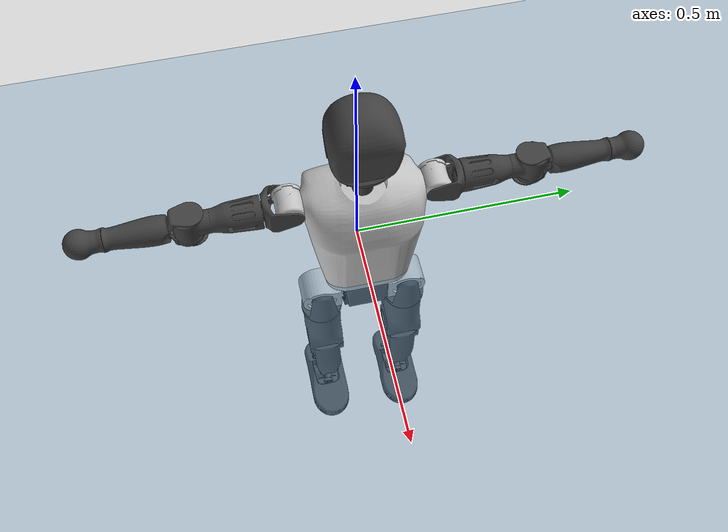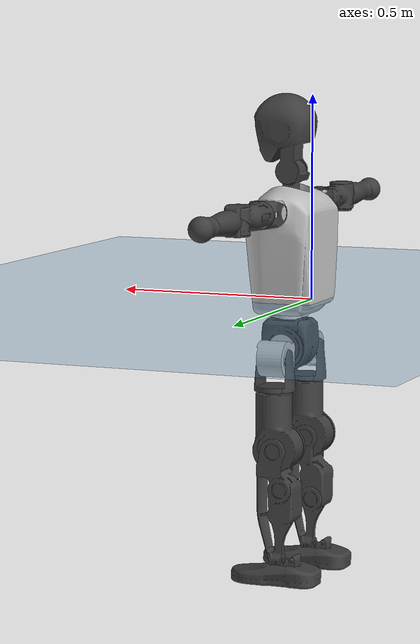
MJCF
<mujoco model="T1">
  <compiler angle="radian" assetdir="assets" balanceinertia="true" inertiafromgeom="false"/>

  <option timestep="0.005" density="1.2" viscosity="2e-05"/>

  <size nkey="1"/>

  <visual>
    <quality shadowsize="8192"/>
    <map shadowclip="0.5"/>
  </visual>

  <default>
    <default class="/">
      <joint armature="0.01" damping="0.01" frictionloss="0.1"/>
      <geom contype="0" conaffinity="0" group="1" solref="-1000 -80"/>
      <site size="0.01 0.005 0.005" group="5"/>
      <general forcelimited="true" biastype="affine" gainprm="25" biasprm="0 -25 -0.6"/>
      <default class="t1">
        <geom rgba="0.25 0.25 0.25 1"/>
        <default class="visual">
          <geom type="mesh" group="2"/>
        </default>
        <default class="collision">
          <geom group="3"/>
        </default>
        <default class="foot">
          <geom size="0.1115 0.05 0.015" type="box" condim="6" group="4" priority="1" solimp="0.015 1 0.015"/>
        </default>
        <default class="reward_collision_sphere">
          <geom group="5" rgba="1 0 0 1"/>
        </default>
      </default>
    </default>
  </default>

  <asset>
    <texture type="skybox" colorspace="auto" name="//unnamed_texture_0" builtin="gradient" rgb1="0.95 0.95 0.95" rgb2="0.95 0.95 0.95" width="100" height="600"/>
    <texture type="2d" colorspace="auto" name="texplane" builtin="checker" rgb1="0.345 0.575 0.748" rgb2="0.345 0.575 0.748" markrgb="1 1 1" width="512" height="512"/>
    <material name="MatPlane" class="/" texture="texplane" texuniform="true" texrepeat="2 2" specular="0.9"/>
    <mesh name="Trunk" class="/" file="Trunk.stl"/>
    <mesh name="H1" class="/" file="H1.stl"/>
    <mesh name="H2" class="/" file="H2.stl"/>
    <mesh name="AL1" class="/" file="AL1.stl"/>
    <mesh name="AL2" class="/" file="AL2.stl"/>
    <mesh name="AL3" class="/" file="AL3.stl"/>
    <mesh name="left_hand_link" class="/" file="left_hand_link.stl"/>
    <mesh name="AR1" class="/" file="AR1.stl"/>
    <mesh name="AR2" class="/" file="AR2.stl"/>
    <mesh name="AR3" class="/" file="AR3.stl"/>
    <mesh name="right_hand_link" class="/" file="right_hand_link.stl"/>
    <mesh name="Waist" class="/" file="Waist.stl"/>
    <mesh name="Hip_Pitch_Left" class="/" file="Hip_Pitch_Left.stl"/>
    <mesh name="Hip_Roll_Left" class="/" file="Hip_Roll_Left.stl"/>
    <mesh name="Hip_Yaw_Left" class="/" file="Hip_Yaw_Left.stl"/>
    <mesh name="Shank_Left" class="/" file="Shank_Left.stl"/>
    <mesh name="Ankle_Cross_Left" class="/" file="Ankle_Cross_Left.stl"/>
    <mesh name="left_foot_link" class="/" file="left_foot_link.stl"/>
    <mesh name="Hip_Pitch_Right" class="/" file="Hip_Pitch_Right.stl"/>
    <mesh name="Hip_Roll_Right" class="/" file="Hip_Roll_Right.stl"/>
    <mesh name="Hip_Yaw_Right" class="/" file="Hip_Yaw_Right.stl"/>
    <mesh name="Shank_Right" class="/" file="Shank_Right.stl"/>
    <mesh name="Ankle_Cross_Right" class="/" file="Ankle_Cross_Right.stl"/>
    <mesh name="right_foot_link" class="/" file="right_foot_link.stl"/>
  </asset>

  <worldbody>
    <geom name="floor" class="/" size="100 100 0.125" type="plane" group="0" material="MatPlane"/>
    <light name="toplight_shadow" class="/" pos="0 0 5" dir="0.0990148 0.0990148 -0.990148" type="directional" ambient="0.04 0.04 0.04" diffuse="0.55 0.55 0.55" specular="0.12 0.12 0.12"/>
    <light name="toplight_fill" class="/" pos="0 0 5" dir="0.0990148 0.0990148 -0.990148" type="directional" castshadow="false" ambient="0.04 0.04 0.04" diffuse="0.3 0.3 0.3" specular="0.08 0.08 0.08"/>
    <body name="trunk" childclass="t1" pos="7.98794e-05 0.000615673 0.000492091" quat="1 0.000356208 -7.52129e-05 3.5773e-06">
      <inertial pos="0.0507867 0.000212828 0.108575" quat="0.99992 -0.000939139 -0.0125726 0.000721638" mass="10.4174" diaginertia="0.0626316 0.0566745 0.0657304"/>
      <joint name="//unnamed_joint_0" type="free" armature="0" damping="0" frictionloss="0"/>
      <geom name="//unnamed_geom_1" class="visual" rgba="0.76 0.76 0.76 1" mesh="Trunk"/>
      <geom name="//unnamed_geom_2" class="collision" size="0.0721836 0.0962448 0.144367" pos="0.0550514 0 0.123537" type="box"/>
      <geom name="//unnamed_geom_3" class="reward_collision_sphere" size="0.110681" pos="0.0550514 0 0.102947"/>
      <geom name="//unnamed_geom_4" class="reward_collision_sphere" size="0.0144367" pos="0.0550514 0.0799293 0"/>
      <geom name="//unnamed_geom_5" class="reward_collision_sphere" size="0.0144367" pos="0.0550514 -0.0799293 0"/>
      <geom name="//unnamed_geom_6" class="reward_collision_sphere" size="0.0144367" pos="0.0550514 0.100617 0.185305"/>
      <geom name="//unnamed_geom_7" class="reward_collision_sphere" size="0.0144367" pos="0.0550514 -0.100617 0.185305"/>
      <site name="imu" pos="0.00275905 0.000249685 -0.00234704" size="0.00962448"/>
      <camera name="track" pos="0 -1.88069 0" quat="0.707107 0.707107 0 0" mode="trackcom"/>
      <camera name="ego_camera" pos="0.111938 0 0.432379" quat="-0.5 -0.5 0.5 0.5"/>
      <body name="H1" pos="0.0554258 -0.000298886 0.248031" quat="1 -3.42996e-06 5.69197e-05 3.73695e-05">
        <inertial pos="-0.00106218 -0.00203365 0.0591188" quat="0.763974 -0.0130983 8.05022e-05 0.645114" mass="0.397892" diaginertia="0.000157342 0.000162374 0.000174201"/>
        <joint name="AAHead_yaw" pos="0 0 0" axis="0.000199819 0.000110394 1" range="-1.55865 1.57546" armature="0.0105457" damping="0.0125514" frictionloss="0.104631"/>
        <geom name="//unnamed_geom_8" class="visual" mesh="H1"/>
        <body name="H2" pos="0.000326077 -0.00267264 0.0644679" quat="1 -0.000156824 -9.17858e-05 0.000469484">
          <inertial pos="0.00740214 -0.000843783 0.0992831" quat="0.988649 0.109266 -0.0711974 -0.0746055" mass="0.559652" diaginertia="0.00133868 0.00138265 0.0020033"/>
          <joint name="Head_pitch" pos="0 0 0" axis="-0.00092858 -0.999986 0.00522433" range="-1.21338 0.362184" armature="0.00951813" damping="0" frictionloss="0.0978592"/>
          <geom name="//unnamed_geom_9" class="visual" mesh="H2"/>
          <geom name="//unnamed_geom_10" class="collision" size="0.0769958" pos="0.00917523 0 0.113242"/>
          <geom name="//unnamed_geom_11" class="reward_collision_sphere" size="0.0866203" pos="0.0183505 0 0.102947"/>
        </body>
      </body>
      <body name="AL1" pos="0.0534717 0.101116 0.223727" quat="0.999999 -0.000246168 0.00062867 -0.00109032">
        <inertial pos="-0.0010015 0.0425274 -0.000391004" quat="0.503743 0.495596 -0.504698 0.495891" mass="0.476167" diaginertia="0.00089358 0.000931641 0.000334681"/>
        <joint name="Left_Shoulder_Pitch" pos="0 0 0" axis="-0.00658255 0.999978 0.000422803" stiffness="0.00280522" range="-3.29959 1.26355" armature="0.00966069" damping="0" frictionloss="0.0936546"/>
        <geom name="//unnamed_geom_12" class="visual" rgba="0.76 0.76 0.76 1" mesh="AL1"/>
        <body name="AL2" pos="-0.000366016 0.0435691 -0.00074551" quat="1 -0.000275812 4.59115e-05 -0.00019384">
          <inertial pos="0.00437471 0.0374661 0.000348134" quat="0.48793 0.511459 -0.488439 0.511626" mass="0.141533" diaginertia="0.000260419 0.000252446 0.000205105"/>
          <joint name="Left_Shoulder_Roll" pos="0 0 0" axis="-0.999998 0.000711364 0.00210983" range="-1.58598 1.74202" armature="0.010613" damping="0.00823688" frictionloss="0.0955042"/>
          <geom name="//unnamed_geom_13" class="visual" mesh="AL2"/>
          <body name="AL3" pos="-0.000140091 0.0575207 -0.000355071" quat="1 -0.000191775 0.000341602 0.000156676">
            <inertial pos="0.00116841 0.078277 -0.00122332" quat="0.707089 0.707123 -0.00139291 -0.000704489" mass="0.87813" diaginertia="0.00840876 0.00931852 0.000702374"/>
            <joint name="Left_Elbow_Pitch" pos="0 0 0" axis="-0.00399724 -0.999992 -0.000776632" range="-2.31708 2.28889" armature="0.0108256" damping="0.00945458" frictionloss="0.0961256"/>
            <geom name="//unnamed_geom_14" class="visual" mesh="AL3"/>
            <geom name="//unnamed_geom_15" class="collision" size="0.0288734 0.0721836" pos="0 0.0470172 0" quat="0.707105 0.707108 0 0" type="cylinder"/>
            <geom name="//unnamed_geom_16" class="reward_collision_sphere" size="0.0346481"/>
            <body name="left_hand_link" pos="0.00128181 0.138339 0.000387596" quat="0.999999 0.000646536 -0.000730459 -0.000280706">
              <inertial pos="-0.00214486 0.102223 0.0001616" quat="0.707892 0.706314 -0.000267417 0.00307264" mass="0.293159" diaginertia="0.0052012 0.00591255 0.000254064"/>
              <joint name="Left_Elbow_Yaw" pos="0 0 0" axis="-0.000586734 -0.000791987 1" stiffness="0.000759518" range="-2.44723 -0.0414757" armature="0.00950925" damping="0.00894934" frictionloss="0.0948852"/>
              <geom name="//unnamed_geom_17" class="visual" mesh="left_hand_link"/>
              <geom name="//unnamed_geom_18" class="collision" size="0.0288734 0.0842142" pos="0 0.122245 0" quat="0.707105 0.707108 0 0" type="cylinder"/>
              <geom name="//unnamed_geom_19" class="reward_collision_sphere" size="0.0481224"/>
              <geom name="//unnamed_geom_20" class="reward_collision_sphere" size="0.0336857" pos="0 0.103438 0"/>
              <geom name="//unnamed_geom_21" class="reward_collision_sphere" size="0.0336857" pos="0 0.202174 0"/>
            </body>
          </body>
        </body>
      </body>
      <body name="AR1" pos="0.0513169 -0.100618 0.224559" quat="1 -0.000133504 -0.000138812 -0.00012954">
        <inertial pos="-0.000989307 -0.0449614 0.000320394" quat="0.504267 0.496063 -0.504221 0.495377" mass="0.458584" diaginertia="0.000881308 0.000929733 0.000328483"/>
        <joint name="Right_Shoulder_Pitch" pos="0 0 0" axis="0.00946169 -0.999944 0.00472798" range="-1.23203 3.32072" armature="0.0103363" damping="0.0141015" frictionloss="0.0998521"/>
        <geom name="//unnamed_geom_22" class="visual" rgba="0.76 0.76 0.76 1" mesh="AR1"/>
        <body name="AR2" pos="0.00162487 -0.0428157 0.000213372" quat="0.999999 -0.000241323 0.000553817 -0.000855297">
          <inertial pos="0.00353273 -0.0351503 0.00117001" quat="0.513679 0.487477 -0.513493 0.484588" mass="0.139282" diaginertia="0.000260275 0.000259414 0.000205428"/>
          <joint name="Right_Shoulder_Roll" pos="0 0 0" axis="-0.999977 -0.00258054 -0.00632074" range="-1.76065 1.55002" armature="0.00950743" damping="0.00357933" frictionloss="0.107726"/>
          <geom name="//unnamed_geom_23" class="visual" mesh="AR2"/>
          <body name="AR3" pos="-0.00048083 -0.0583504 -0.00248869" quat="1 2.89441e-06 4.35006e-06 1.30497e-06">
            <inertial pos="2.33257e-05 -0.0821698 0.000994471" quat="0.70466 0.709518 -0.00162116 -0.0059866" mass="0.909915" diaginertia="0.00836173 0.00948589 0.00073211"/>
            <joint name="Right_Elbow_Pitch" pos="0 0 0" axis="-0.0050076 0.999973 -0.00531469" range="-2.30323 2.27302" armature="0.0086737" damping="0.00967754" frictionloss="0.0969281"/>
            <geom name="//unnamed_geom_24" class="visual" mesh="AR3"/>
            <geom name="//unnamed_geom_25" class="collision" size="0.0288734 0.0721836" pos="0 -0.0470172 0" quat="0.707105 0.707108 0 0" type="cylinder"/>
            <geom name="//unnamed_geom_26" class="reward_collision_sphere" size="0.0346481"/>
            <body name="right_hand_link" pos="-0.00058715 -0.138266 -0.000632889" quat="1 9.03595e-06 2.16665e-05 0.00045763">
              <inertial pos="7.51099e-05 -0.102086 0.00299515" quat="0.706077 0.708135 0.000213013 0.000251571" mass="0.294344" diaginertia="0.00531833 0.00607037 0.000250534"/>
              <joint name="Right_Elbow_Yaw" pos="0 0 0" axis="0.00242554 0.000972475 0.999997" stiffness="0.000413764" range="-0.00671501 2.4409" armature="0.0104506" damping="0" frictionloss="0.0994442"/>
              <geom name="//unnamed_geom_27" class="visual" mesh="right_hand_link"/>
              <geom name="//unnamed_geom_28" class="collision" size="0.0288734 0.0842142" pos="0 -0.122245 0" quat="0.707105 0.707108 0 0" type="cylinder"/>
              <geom name="//unnamed_geom_29" class="reward_collision_sphere" size="0.0481224"/>
              <geom name="//unnamed_geom_30" class="reward_collision_sphere" size="0.0336857" pos="0 -0.103438 0"/>
              <geom name="//unnamed_geom_31" class="reward_collision_sphere" size="0.0336857" pos="0 -0.202174 0"/>
            </body>
          </body>
        </body>
      </body>
      <body name="Waist" pos="0.0577879 -0.00254742 -0.116432" quat="1 0.000194817 4.02731e-05 0.000247399">
        <inertial pos="0.000583335 8.56589e-05 0.00755926" quat="0.982493 -0.000905686 -0.186141 0.00766429" mass="2.23386" diaginertia="0.00339853 0.00375634 0.00532229"/>
        <joint name="Waist" pos="0 0 0" axis="0.000627311 0.00880695 0.999961" range="-1.57235 1.53705" armature="0.00970331" damping="0.0109546" frictionloss="0.103553"/>
        <geom name="//unnamed_geom_32" class="visual" mesh="Waist"/>
        <body name="Hip_Pitch_Left" pos="0.00146101 0.0996472 -0.00011712" quat="1 0.000141136 -0.000245137 0.000457506">
          <inertial pos="0.000536038 -0.0067304 -0.0192053" quat="0.975447 0.219837 0.0128467 0.00311118" mass="0.907176" diaginertia="0.00117737 0.00110563 0.00144258"/>
          <joint name="Left_Hip_Pitch" pos="0 0 0" axis="0.00980665 0.999901 0.0100843" range="-1.79485 1.61345" armature="0.00942399" damping="0.00195099" frictionloss="0.0965589"/>
          <geom name="//unnamed_geom_33" class="visual" rgba="0.76 0.76 0.76 1" mesh="Hip_Pitch_Left"/>
          <body name="Hip_Roll_Left" pos="0.00119472 0.00225849 -0.0199165" quat="0.999999 -0.00115223 0.000465374 0.000596992">
            <inertial pos="2.80668e-05 -0.000212175 -0.0553344" quat="0.707953 -0.0102519 -0.00814787 0.706138" mass="0.3352" diaginertia="0.00112622 0.00108806 0.000578238"/>
            <joint name="Left_Hip_Roll" pos="0 0 0" axis="-0.999964 0.00577793 0.00619704" stiffness="0.00180557" range="-1.58684 0.209128" armature="0.00995478" damping="0.00977204" frictionloss="0.0973607"/>
            <geom name="//unnamed_geom_34" class="visual" mesh="Hip_Roll_Left"/>
            <geom name="//unnamed_geom_35" class="reward_collision_sphere" size="0.0529346"/>
            <body name="Hip_Yaw_Left" pos="-0.000167779 -0.000103757 -0.0839881" quat="1 1.65828e-05 1.7222e-05 2.81052e-05">
              <inertial pos="-0.0056606 -0.00122684 -0.0918564" quat="0.701945 -0.0396972 -0.0358213 0.710221" mass="1.90969" diaginertia="0.0165876 0.0181476 0.00292935"/>
              <joint name="Left_Hip_Yaw" pos="0 0 0" axis="0.00102439 0.00134919 -0.999999" range="-1.02325 1.00789" armature="0.0095852" damping="0.00551424" frictionloss="0.0988289"/>
              <geom name="//unnamed_geom_36" class="visual" mesh="Hip_Yaw_Left"/>
              <geom name="//unnamed_geom_37" class="collision" size="0.0481224 0.0769958" type="cylinder"/>
              <body name="Shank_Left" pos="-0.0110685 -0.0013445 -0.137591" quat="1 -5.89962e-06 0.000228132 0.000144054">
                <inertial pos="-0.00454782 -0.000373463 -0.128606" quat="0.997703 0.00708257 -0.0221457 0.0636282" mass="1.53282" diaginertia="0.0225513 0.0254203 0.00209513"/>
                <joint name="Left_Knee_Pitch" pos="0 0 0" axis="-0.00557668 0.999982 0.00234428" range="-0.0210694 2.35179" armature="0.0104669" damping="0.00418207" frictionloss="0.0994502"/>
                <geom name="//unnamed_geom_38" class="visual" mesh="Shank_Left"/>
                <geom name="//unnamed_geom_39" class="collision" size="0.0481224 0.0721836" pos="0 0 -0.123537" type="cylinder"/>
                <geom name="//unnamed_geom_40" class="reward_collision_sphere" size="0.0625591"/>
                <body name="Ankle_Cross_Left" pos="0.00023512 0.000707814 -0.2898" quat="1 0.000140245 -0.000158627 -0.000907813">
                  <inertial pos="-0.00249436 -0.00209199 -0.00865364" quat="0.445903 0.552064 0.549695 0.440717" mass="0.0648836" diaginertia="1.89152e-05 1.91911e-05 1.31778e-05"/>
                  <joint name="Left_Ankle_Pitch" pos="0 0 0" axis="0.000287445 0.999997 0.00262754" stiffness="0.00114062" range="-0.868536 0.33008" armature="0.0102233" damping="0.00722376" frictionloss="0.0988545"/>
                  <geom name="//unnamed_geom_41" class="visual" mesh="Ankle_Cross_Left"/>
                  <body name="left_foot_link" pos="-0.00147025 -0.00212337 -0.0119161" quat="1 -0.000103325 2.23917e-05 0.00014607">
                    <inertial pos="0.00142646 -0.000514488 -0.00700497" quat="-0.000376282 0.622894 -0.00200278 0.782304" mass="0.619727" diaginertia="0.00177726 0.0017665 0.00258124"/>
                    <joint name="Left_Ankle_Roll" pos="0 0 0" axis="-1 -1.80804e-05 -0.000894655" stiffness="0.000809918" range="-0.433046 0.443167" armature="0.00874595" damping="0.010414" frictionloss="0.09787"/>
                    <geom name="//unnamed_geom_42" class="visual" mesh="left_foot_link"/>
                    <geom name="left_foot" class="foot" size="0.111099 0.0483061 0.0139492" pos="0.00917523 0 -0.0154421"/>
                    <geom name="//unnamed_geom_44" class="reward_collision_sphere" size="0.0500473" pos="0.00917523 0 -0.0154421"/>
                    <geom name="//unnamed_geom_45" class="reward_collision_sphere" size="0.0288734" pos="0.0871647 -0.0216279 -0.0154421"/>
                    <geom name="//unnamed_geom_46" class="reward_collision_sphere" size="0.0288734" pos="-0.0642266 -0.0216279 -0.0154421"/>
                    <site name="left_foot" class="foot" pos="0.00917523 0 -0.0154421" size="0.00962448"/>
                  </body>
                </body>
              </body>
            </body>
          </body>
        </body>
        <body name="Hip_Pitch_Right" pos="-0.00162365 -0.10067 -0.000201656" quat="0.999999 0.00121029 0.000730256 3.25972e-05">
          <inertial pos="0.000403218 0.00461743 -0.0184744" quat="0.973409 -0.228603 0.0139492 -0.00448437" mass="0.887487" diaginertia="0.00114571 0.00105385 0.00142657"/>
          <joint name="Right_Hip_Pitch" pos="0 0 0" axis="0.0020571 -0.999993 -0.00318723" range="-1.58287 1.80558" armature="0.00997964" damping="0.0123051" frictionloss="0.106706"/>
          <geom name="//unnamed_geom_47" class="visual" rgba="0.76 0.76 0.76 1" mesh="Hip_Pitch_Right"/>
          <body name="Hip_Roll_Right" pos="-0.000530531 0.00137105 -0.0192487" quat="1 2.18863e-05 -0.000241613 4.33786e-05">
            <inertial pos="-0.000748291 0.00213603 -0.0573908" quat="0.706722 -0.00213701 -0.00408999 0.707476" mass="0.338718" diaginertia="0.00112686 0.00110147 0.000588462"/>
            <joint name="Right_Hip_Roll" pos="0 0 0" axis="-0.999998 0.000967313 -0.00150663" stiffness="0.000687131" range="-0.21011 1.56721" armature="0.00922915" damping="0.010054" frictionloss="0.0982015"/>
            <geom name="//unnamed_geom_48" class="visual" mesh="Hip_Roll_Right"/>
            <geom name="//unnamed_geom_49" class="reward_collision_sphere" size="0.0529346"/>
            <body name="Hip_Yaw_Right" pos="-0.000219922 -0.000454718 -0.082927" quat="1 0.000385324 -8.42461e-05 -0.000181736">
              <inertial pos="-0.00634241 -0.000460598 -0.0926947" quat="0.714683 -0.0315776 -0.033475 0.697933" mass="1.89886" diaginertia="0.0168363 0.0184466 0.00303913"/>
              <joint name="Right_Hip_Yaw" pos="0 0 0" axis="-0.0045439 -0.00223085 -0.999987" stiffness="0.00421978" range="-0.992234 0.976271" armature="0.00846347" damping="0.014626" frictionloss="0.105731"/>
              <geom name="//unnamed_geom_50" class="visual" mesh="Hip_Yaw_Right"/>
              <geom name="//unnamed_geom_51" class="collision" size="0.0481224 0.0769958" type="cylinder"/>
              <body name="Shank_Right" pos="-0.0137034 0.00154825 -0.138043" quat="1 0.000668872 0.000281892 0.000638033">
                <inertial pos="-0.0056844 0.00074517 -0.124142" quat="0.999297 0.00105283 -0.0209019 -0.0310958" mass="1.57585" diaginertia="0.0229428 0.02556 0.00234381"/>
                <joint name="Right_Knee_Pitch" pos="0 0 0" axis="-0.00677483 -0.999967 0.00439947" range="-2.31375 -0.0316285" armature="0.00958757" damping="0.0105064" frictionloss="0.10118"/>
                <geom name="//unnamed_geom_52" class="visual" mesh="Shank_Right"/>
                <geom name="//unnamed_geom_53" class="collision" size="0.0481224 0.0721836" pos="0 0 -0.123537" type="cylinder"/>
                <geom name="//unnamed_geom_54" class="reward_collision_sphere" size="0.0625591"/>
                <body name="Ankle_Cross_Right" pos="0.000186398 -0.00217437 -0.288559" quat="0.999999 0.000777402 -0.000394698 -0.000826101">
                  <inertial pos="-0.00237592 0.00115931 -0.00733277" quat="0.442276 0.552121 0.549667 0.44432" mass="0.0653747" diaginertia="1.86863e-05 1.88868e-05 1.29053e-05"/>
                  <joint name="Right_Ankle_Pitch" pos="0 0 0" axis="0.00222197 -0.999976 0.00652005" stiffness="0.00254178" range="-0.378597 0.877841" armature="0.00981657" damping="0.00971311" frictionloss="0.0949996"/>
                  <geom name="//unnamed_geom_55" class="visual" mesh="Ankle_Cross_Right"/>
                  <body name="right_foot_link" pos="0.000308166 -0.00273027 -0.0116452" quat="1 1.37949e-05 -0.000158628 6.43857e-05">
                    <inertial pos="-0.000664215 -0.00116692 -0.0106608" quat="0.00166764 0.62269 -0.00160502 0.782465" mass="0.619064" diaginertia="0.00176809 0.00175316 0.00251987"/>
                    <joint name="Right_Ankle_Roll" pos="0 0 0" axis="-1 -1.39931e-05 0.000992252" range="-0.39032 0.44093" armature="0.0103245" damping="0.00771091" frictionloss="0.093701"/>
                    <geom name="//unnamed_geom_56" class="visual" mesh="right_foot_link"/>
                    <geom name="right_foot" class="foot" size="0.0922962 0.0478163 0.0138636" pos="0.00917523 0 -0.0154421"/>
                    <geom name="//unnamed_geom_58" class="reward_collision_sphere" size="0.0384979"/>
                    <geom name="//unnamed_geom_59" class="reward_collision_sphere" size="0.0288734" pos="0.00917523 0 -0.0154421"/>
                    <geom name="//unnamed_geom_60" class="reward_collision_sphere" size="0.0288734" pos="0.0871647 0.0216279 -0.0154421"/>
                    <geom name="//unnamed_geom_61" class="reward_collision_sphere" size="0.0288734" pos="-0.0642266 0.0216279 -0.0154421"/>
                    <site name="right_foot" class="foot" pos="0.00917523 0 -0.0154421" size="0.00962448"/>
                  </body>
                </body>
              </body>
            </body>
          </body>
        </body>
      </body>
    </body>
  </worldbody>

  <contact>
    <pair class="/" geom1="floor" geom2="left_foot" name="//unnamed_contact_0"/>
    <pair class="/" geom1="floor" geom2="right_foot" name="//unnamed_contact_1"/>
  </contact>

  <actuator>
    <general name="AAHead_yaw" class="/" joint="AAHead_yaw" forcerange="-6.80617 6.80617" gainprm="24.4618" biasprm="0 -24.4618 -0.58561"/>
    <general name="Head_pitch" class="/" joint="Head_pitch" forcerange="-6.83852 6.83852" gainprm="24.4618" biasprm="0 -24.4618 -0.58561"/>
    <general name="Left_Shoulder_Pitch" class="/" joint="Left_Shoulder_Pitch" forcerange="-17.3204 17.3204" gainprm="24.4618" biasprm="0 -24.4618 -0.58561"/>
    <general name="Left_Shoulder_Roll" class="/" joint="Left_Shoulder_Roll" forcerange="-18.1526 18.1526" gainprm="24.4618" biasprm="0 -24.4618 -0.58561"/>
    <general name="Left_Elbow_Pitch" class="/" joint="Left_Elbow_Pitch" forcerange="-17.0589 17.0589" gainprm="24.4618" biasprm="0 -24.4618 -0.58561"/>
    <general name="Left_Elbow_Yaw" class="/" joint="Left_Elbow_Yaw" forcerange="-17.368 17.368" gainprm="24.4618" biasprm="0 -24.4618 -0.58561"/>
    <general name="Right_Shoulder_Pitch" class="/" joint="Right_Shoulder_Pitch" forcerange="-17.511 17.511" gainprm="24.4618" biasprm="0 -24.4618 -0.58561"/>
    <general name="Right_Shoulder_Roll" class="/" joint="Right_Shoulder_Roll" forcerange="-18.0005 18.0005" gainprm="24.4618" biasprm="0 -24.4618 -0.58561"/>
    <general name="Right_Elbow_Pitch" class="/" joint="Right_Elbow_Pitch" forcerange="-16.8917 16.8917" gainprm="24.4618" biasprm="0 -24.4618 -0.58561"/>
    <general name="Right_Elbow_Yaw" class="/" joint="Right_Elbow_Yaw" forcerange="-17.723 17.723" gainprm="24.4618" biasprm="0 -24.4618 -0.58561"/>
    <general name="Waist" class="/" joint="Waist" forcerange="-27.4934 27.4934" gainprm="24.4618" biasprm="0 -24.4618 -0.58561"/>
    <general name="Left_Hip_Pitch" class="/" joint="Left_Hip_Pitch" forcerange="-44.8206 44.8206" gainprm="24.4618" biasprm="0 -24.4618 -0.58561"/>
    <general name="Left_Hip_Roll" class="/" joint="Left_Hip_Roll" forcerange="-29.0298 29.0298" gainprm="24.4618" biasprm="0 -24.4618 -0.58561"/>
    <general name="Left_Hip_Yaw" class="/" joint="Left_Hip_Yaw" forcerange="-29.2445 29.2445" gainprm="24.4618" biasprm="0 -24.4618 -0.58561"/>
    <general name="Left_Knee_Pitch" class="/" joint="Left_Knee_Pitch" forcerange="-54.5064 54.5064" gainprm="24.4618" biasprm="0 -24.4618 -0.58561"/>
    <general name="Left_Ankle_Pitch" class="/" joint="Left_Ankle_Pitch" forcerange="-20.9071 20.9071" gainprm="24.4618" biasprm="0 -24.4618 -0.58561"/>
    <general name="Left_Ankle_Roll" class="/" joint="Left_Ankle_Roll" forcerange="-13.1363 13.1363" gainprm="24.4618" biasprm="0 -24.4618 -0.58561"/>
    <general name="Right_Hip_Pitch" class="/" joint="Right_Hip_Pitch" forcerange="-43.5665 43.5665" gainprm="24.4618" biasprm="0 -24.4618 -0.58561"/>
    <general name="Right_Hip_Roll" class="/" joint="Right_Hip_Roll" forcerange="-27.5332 27.5332" gainprm="24.4618" biasprm="0 -24.4618 -0.58561"/>
    <general name="Right_Hip_Yaw" class="/" joint="Right_Hip_Yaw" forcerange="-31.1076 31.1076" gainprm="24.4618" biasprm="0 -24.4618 -0.58561"/>
    <general name="Right_Knee_Pitch" class="/" joint="Right_Knee_Pitch" forcerange="-55.9441 55.9441" gainprm="24.4618" biasprm="0 -24.4618 -0.58561"/>
    <general name="Right_Ankle_Pitch" class="/" joint="Right_Ankle_Pitch" forcerange="-19.1126 19.1126" gainprm="24.4618" biasprm="0 -24.4618 -0.58561"/>
    <general name="Right_Ankle_Roll" class="/" joint="Right_Ankle_Roll" forcerange="-14.4812 14.4812" gainprm="24.4618" biasprm="0 -24.4618 -0.58561"/>
  </actuator>

  <sensor>
    <gyro site="imu" name="imu_angular_velocity"/>
    <velocimeter site="imu" name="imu_linear_velocity"/>
    <framelinvel objtype="site" objname="left_foot" name="left_foot_global_linear_velocity"/>
    <framelinvel objtype="site" objname="right_foot" name="right_foot_global_linear_velocity"/>
  </sensor>

  <keyframe>
    <key name="home" qpos="0 0 0.6385 1 0 0 0 0 0 0 1.4 0 -0.4 0 -1.4 0 0.4 0 -0.4 0 0 0.8 -0.4 0 0.4 0 0 -0.8 0.4 0"/>
  </keyframe>
</mujoco>
